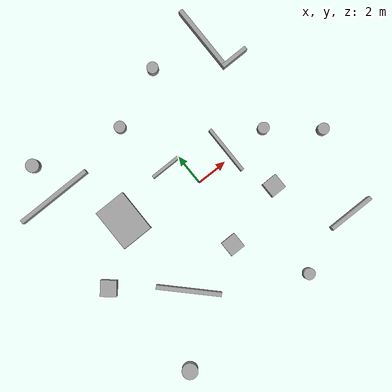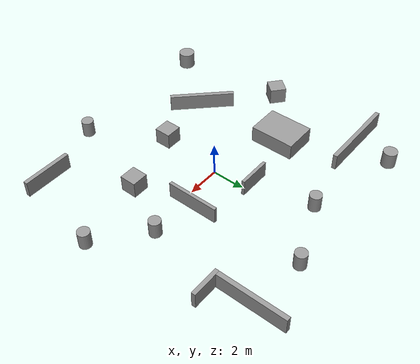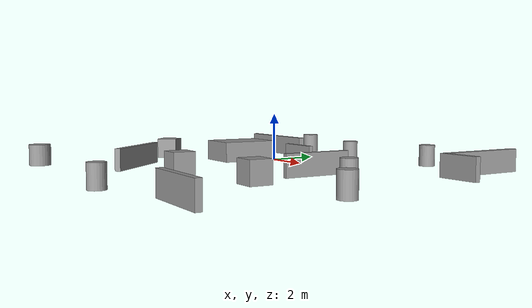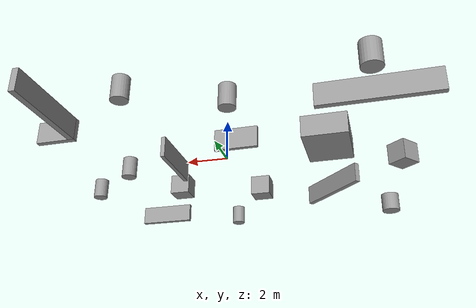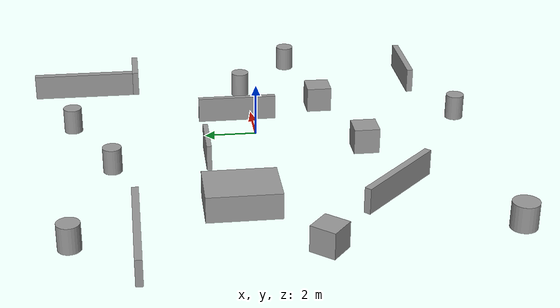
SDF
<?xml version='1.0'?>
<sdf version='1.7'>
  <model name='Experiment_Simple'>
    <link name='link_10'>
      <inertial>
        <mass>1</mass>
        <inertia>
          <ixx>0.166667</ixx>
          <ixy>0</ixy>
          <ixz>0</ixz>
          <iyy>0.166667</iyy>
          <iyz>0</iyz>
          <izz>0.166667</izz>
        </inertia>
      </inertial>
      <pose>-8.29662 -1.56155 0 0 0 -0.699492</pose>
      <visual name='visual'>
        <pose>0 0 0 0 -0 0</pose>
        <geometry>
          <box>
            <size>1 1 1</size>
          </box>
        </geometry>
        <material>
          <lighting>1</lighting>
          <script>
            <uri>file://media/materials/scripts/gazebo.material</uri>
            <name>Gazebo/Grey</name>
          </script>
          <shader type='pixel'/>
        </material>
        <transparency>0</transparency>
        <cast_shadows>1</cast_shadows>
      </visual>
      <collision name='collision'>
        <laser_retro>0</laser_retro>
        <max_contacts>10</max_contacts>
        <pose>0 0 0 0 -0 0</pose>
        <geometry>
          <box>
            <size>1 1 1</size>
          </box>
        </geometry>
        <surface>
          <friction>
            <ode>
              <mu>1</mu>
              <mu2>1</mu2>
              <fdir1>0 0 0</fdir1>
              <slip1>0</slip1>
              <slip2>0</slip2>
            </ode>
            <torsional>
              <coefficient>1</coefficient>
              <patch_radius>0</patch_radius>
              <surface_radius>0</surface_radius>
              <use_patch_radius>1</use_patch_radius>
              <ode>
                <slip>0</slip>
              </ode>
            </torsional>
          </friction>
          <bounce>
            <restitution_coefficient>0</restitution_coefficient>
            <threshold>1e+06</threshold>
          </bounce>
          <contact>
            <collide_without_contact>0</collide_without_contact>
            <collide_without_contact_bitmask>1</collide_without_contact_bitmask>
            <collide_bitmask>1</collide_bitmask>
            <ode>
              <soft_cfm>0</soft_cfm>
              <soft_erp>0.2</soft_erp>
              <kp>1e+13</kp>
              <kd>1</kd>
              <max_vel>0.01</max_vel>
              <min_depth>0</min_depth>
            </ode>
            <bullet>
              <split_impulse>1</split_impulse>
              <split_impulse_penetration_threshold>-0.01</split_impulse_penetration_threshold>
              <soft_cfm>0</soft_cfm>
              <soft_erp>0.2</soft_erp>
              <kp>1e+13</kp>
              <kd>1</kd>
            </bullet>
          </contact>
        </surface>
      </collision>
    </link>
    <link name='link_2'>
      <inertial>
        <mass>1.1429</mass>
        <inertia>
          <ixx>1.72518</ixx>
          <ixy>0</ixy>
          <ixz>0</ixz>
          <iyy>0.102508</iyy>
          <iyz>0</iyz>
          <izz>1.63721</izz>
        </inertia>
        <pose>0 0 0 0 -0 0</pose>
      </inertial>
      <pose>5.66657 6.79805 0 0 -0 0</pose>
      <visual name='visual'>
        <pose>0 0 0 0 -0 0</pose>
        <geometry>
          <box>
            <size>0.276226 4.13688 1</size>
          </box>
        </geometry>
        <material>
          <lighting>1</lighting>
          <script>
            <uri>file://media/materials/scripts/gazebo.material</uri>
            <name>Gazebo/Grey</name>
          </script>
          <shader type='pixel'/>
        </material>
        <transparency>0</transparency>
        <cast_shadows>1</cast_shadows>
      </visual>
      <collision name='collision'>
        <laser_retro>0</laser_retro>
        <max_contacts>10</max_contacts>
        <pose>0 0 0 0 -0 0</pose>
        <geometry>
          <box>
            <size>0.276226 4.13688 1</size>
          </box>
        </geometry>
        <surface>
          <friction>
            <ode>
              <mu>1</mu>
              <mu2>1</mu2>
              <fdir1>0 0 0</fdir1>
              <slip1>0</slip1>
              <slip2>0</slip2>
            </ode>
            <torsional>
              <coefficient>1</coefficient>
              <patch_radius>0</patch_radius>
              <surface_radius>0</surface_radius>
              <use_patch_radius>1</use_patch_radius>
              <ode>
                <slip>0</slip>
              </ode>
            </torsional>
          </friction>
          <bounce>
            <restitution_coefficient>0</restitution_coefficient>
            <threshold>1e+06</threshold>
          </bounce>
          <contact>
            <collide_without_contact>0</collide_without_contact>
            <collide_without_contact_bitmask>1</collide_without_contact_bitmask>
            <collide_bitmask>1</collide_bitmask>
            <ode>
              <soft_cfm>0</soft_cfm>
              <soft_erp>0.2</soft_erp>
              <kp>1e+13</kp>
              <kd>1</kd>
              <max_vel>0.01</max_vel>
              <min_depth>0</min_depth>
            </ode>
            <bullet>
              <split_impulse>1</split_impulse>
              <split_impulse_penetration_threshold>-0.01</split_impulse_penetration_threshold>
              <soft_cfm>0</soft_cfm>
              <soft_erp>0.2</soft_erp>
              <kp>1e+13</kp>
              <kd>1</kd>
            </bullet>
          </contact>
        </surface>
      </collision>
    </link>
    <link name='link_3'>
      <inertial>
        <mass>1.32032</mass>
        <inertia>
          <ixx>0.116978</ixx>
          <ixy>0</ixy>
          <ixz>0</ixz>
          <iyy>3.14635</iyy>
          <iyz>0</iyz>
          <izz>3.04328</izz>
        </inertia>
        <pose>0 0 0 0 -0 0</pose>
      </inertial>
      <pose>6 -7.23567 0 0 -0 0</pose>
      <visual name='visual'>
        <pose>0 0 0 0 -0 0</pose>
        <geometry>
          <box>
            <size>3 0.251362 1</size>
          </box>
        </geometry>
        <material>
          <lighting>1</lighting>
          <script>
            <uri>file://media/materials/scripts/gazebo.material</uri>
            <name>Gazebo/Grey</name>
          </script>
          <shader type='pixel'/>
        </material>
        <transparency>0</transparency>
        <cast_shadows>1</cast_shadows>
      </visual>
      <collision name='collision'>
        <laser_retro>0</laser_retro>
        <max_contacts>10</max_contacts>
        <pose>0 0 0 0 -0 0</pose>
        <geometry>
          <box>
            <size>3.25322 0.251362 1</size>
          </box>
        </geometry>
        <surface>
          <friction>
            <ode>
              <mu>1</mu>
              <mu2>1</mu2>
              <fdir1>0 0 0</fdir1>
              <slip1>0</slip1>
              <slip2>0</slip2>
            </ode>
            <torsional>
              <coefficient>1</coefficient>
              <patch_radius>0</patch_radius>
              <surface_radius>0</surface_radius>
              <use_patch_radius>1</use_patch_radius>
              <ode>
                <slip>0</slip>
              </ode>
            </torsional>
          </friction>
          <bounce>
            <restitution_coefficient>0</restitution_coefficient>
            <threshold>1e+06</threshold>
          </bounce>
          <contact>
            <collide_without_contact>0</collide_without_contact>
            <collide_without_contact_bitmask>1</collide_without_contact_bitmask>
            <collide_bitmask>1</collide_bitmask>
            <ode>
              <soft_cfm>0</soft_cfm>
              <soft_erp>0.2</soft_erp>
              <kp>1e+13</kp>
              <kd>1</kd>
              <max_vel>0.01</max_vel>
              <min_depth>0</min_depth>
            </ode>
            <bullet>
              <split_impulse>1</split_impulse>
              <split_impulse_penetration_threshold>-0.01</split_impulse_penetration_threshold>
              <soft_cfm>0</soft_cfm>
              <soft_erp>0.2</soft_erp>
              <kp>1e+13</kp>
              <kd>1</kd>
            </bullet>
          </contact>
        </surface>
      </collision>
    </link>
    <link name='link_5'>
      <inertial>
        <mass>1</mass>
        <inertia>
          <ixx>0.166667</ixx>
          <ixy>0</ixy>
          <ixz>0</ixz>
          <iyy>0.166667</iyy>
          <iyz>0</iyz>
          <izz>0.166667</izz>
        </inertia>
      </inertial>
      <pose>3.40204 -2.9991 0 0 -0 0</pose>
      <visual name='visual'>
        <pose>0 0 0 0 -0 0</pose>
        <geometry>
          <box>
            <size>1 1 1</size>
          </box>
        </geometry>
        <material>
          <lighting>1</lighting>
          <script>
            <uri>file://media/materials/scripts/gazebo.material</uri>
            <name>Gazebo/Grey</name>
          </script>
          <shader type='pixel'/>
        </material>
        <transparency>0</transparency>
        <cast_shadows>1</cast_shadows>
      </visual>
      <collision name='collision'>
        <laser_retro>0</laser_retro>
        <max_contacts>10</max_contacts>
        <pose>0 0 0 0 -0 0</pose>
        <geometry>
          <box>
            <size>1 1 1</size>
          </box>
        </geometry>
        <surface>
          <friction>
            <ode>
              <mu>1</mu>
              <mu2>1</mu2>
              <fdir1>0 0 0</fdir1>
              <slip1>0</slip1>
              <slip2>0</slip2>
            </ode>
            <torsional>
              <coefficient>1</coefficient>
              <patch_radius>0</patch_radius>
              <surface_radius>0</surface_radius>
              <use_patch_radius>1</use_patch_radius>
              <ode>
                <slip>0</slip>
              </ode>
            </torsional>
          </friction>
          <bounce>
            <restitution_coefficient>0</restitution_coefficient>
            <threshold>1e+06</threshold>
          </bounce>
          <contact>
            <collide_without_contact>0</collide_without_contact>
            <collide_without_contact_bitmask>1</collide_without_contact_bitmask>
            <collide_bitmask>1</collide_bitmask>
            <ode>
              <soft_cfm>0</soft_cfm>
              <soft_erp>0.2</soft_erp>
              <kp>1e+13</kp>
              <kd>1</kd>
              <max_vel>0.01</max_vel>
              <min_depth>0</min_depth>
            </ode>
            <bullet>
              <split_impulse>1</split_impulse>
              <split_impulse_penetration_threshold>-0.01</split_impulse_penetration_threshold>
              <soft_cfm>0</soft_cfm>
              <soft_erp>0.2</soft_erp>
              <kp>1e+13</kp>
              <kd>1</kd>
            </bullet>
          </contact>
        </surface>
      </collision>
    </link>
    <link name='link_5_clone'>
      <inertial>
        <mass>1</mass>
        <inertia>
          <ixx>0.166667</ixx>
          <ixy>0</ixy>
          <ixz>0</ixz>
          <iyy>0.166667</iyy>
          <iyz>0</iyz>
          <izz>0.166667</izz>
        </inertia>
      </inertial>
      <pose>-0.778044 -4.21642 0 0 -0 0</pose>
      <visual name='visual'>
        <pose>0 0 0 0 -0 0</pose>
        <geometry>
          <box>
            <size>1 1 1</size>
          </box>
        </geometry>
        <material>
          <lighting>1</lighting>
          <script>
            <uri>file://media/materials/scripts/gazebo.material</uri>
            <name>Gazebo/Grey</name>
          </script>
          <shader type='pixel'/>
        </material>
        <transparency>0</transparency>
        <cast_shadows>1</cast_shadows>
      </visual>
      <collision name='collision'>
        <laser_retro>0</laser_retro>
        <max_contacts>10</max_contacts>
        <pose>0 0 0 0 -0 0</pose>
        <geometry>
          <box>
            <size>1 1 1</size>
          </box>
        </geometry>
        <surface>
          <friction>
            <ode>
              <mu>1</mu>
              <mu2>1</mu2>
              <fdir1>0 0 0</fdir1>
              <slip1>0</slip1>
              <slip2>0</slip2>
            </ode>
            <torsional>
              <coefficient>1</coefficient>
              <patch_radius>0</patch_radius>
              <surface_radius>0</surface_radius>
              <use_patch_radius>1</use_patch_radius>
              <ode>
                <slip>0</slip>
              </ode>
            </torsional>
          </friction>
          <bounce>
            <restitution_coefficient>0</restitution_coefficient>
            <threshold>1e+06</threshold>
          </bounce>
          <contact>
            <collide_without_contact>0</collide_without_contact>
            <collide_without_contact_bitmask>1</collide_without_contact_bitmask>
            <collide_bitmask>1</collide_bitmask>
            <ode>
              <soft_cfm>0</soft_cfm>
              <soft_erp>0.2</soft_erp>
              <kp>1e+13</kp>
              <kd>1</kd>
              <max_vel>0.01</max_vel>
              <min_depth>0</min_depth>
            </ode>
            <bullet>
              <split_impulse>1</split_impulse>
              <split_impulse_penetration_threshold>-0.01</split_impulse_penetration_threshold>
              <soft_cfm>0</soft_cfm>
              <soft_erp>0.2</soft_erp>
              <kp>1e+13</kp>
              <kd>1</kd>
            </bullet>
          </contact>
        </surface>
      </collision>
    </link>
    <link name='link_5_clone_0'>
      <inertial>
        <mass>0.712033</mass>
        <inertia>
          <ixx>0.0615031</ixx>
          <ixy>0</ixy>
          <ixz>0</ixz>
          <iyy>0.882882</iyy>
          <iyz>0</iyz>
          <izz>0.825712</izz>
        </inertia>
        <pose>0 0 0 0 -0 0</pose>
      </inertial>
      <pose>-1 2 0 0 -0 0</pose>
      <visual name='visual'>
        <pose>0 0 0 0 -0 0</pose>
        <geometry>
          <box>
            <size>2 0.191103 1</size>
          </box>
        </geometry>
        <material>
          <lighting>1</lighting>
          <script>
            <uri>file://media/materials/scripts/gazebo.material</uri>
            <name>Gazebo/Grey</name>
          </script>
          <shader type='pixel'/>
        </material>
        <transparency>0</transparency>
        <cast_shadows>1</cast_shadows>
      </visual>
      <collision name='collision'>
        <laser_retro>0</laser_retro>
        <max_contacts>10</max_contacts>
        <pose>0 0 0 0 -0 0</pose>
        <geometry>
          <box>
            <size>2 0.191103 1</size>
          </box>
        </geometry>
        <surface>
          <friction>
            <ode>
              <mu>1</mu>
              <mu2>1</mu2>
              <fdir1>0 0 0</fdir1>
              <slip1>0</slip1>
              <slip2>0</slip2>
            </ode>
            <torsional>
              <coefficient>1</coefficient>
              <patch_radius>0</patch_radius>
              <surface_radius>0</surface_radius>
              <use_patch_radius>1</use_patch_radius>
              <ode>
                <slip>0</slip>
              </ode>
            </torsional>
          </friction>
          <bounce>
            <restitution_coefficient>0</restitution_coefficient>
            <threshold>1e+06</threshold>
          </bounce>
          <contact>
            <collide_without_contact>0</collide_without_contact>
            <collide_without_contact_bitmask>1</collide_without_contact_bitmask>
            <collide_bitmask>1</collide_bitmask>
            <ode>
              <soft_cfm>0</soft_cfm>
              <soft_erp>0.2</soft_erp>
              <kp>1e+13</kp>
              <kd>1</kd>
              <max_vel>0.01</max_vel>
              <min_depth>0</min_depth>
            </ode>
            <bullet>
              <split_impulse>1</split_impulse>
              <split_impulse_penetration_threshold>-0.01</split_impulse_penetration_threshold>
              <soft_cfm>0</soft_cfm>
              <soft_erp>0.2</soft_erp>
              <kp>1e+13</kp>
              <kd>1</kd>
            </bullet>
          </contact>
        </surface>
      </collision>
    </link>
    <link name='link_5_clone_1'>
      <inertial>
        <mass>0.630242</mass>
        <inertia>
          <ixx>0.575272</ixx>
          <ixy>0</ixy>
          <ixz>0</ixz>
          <iyy>0.0546154</iyy>
          <iyz>0</iyz>
          <izz>0.524847</izz>
        </inertia>
        <pose>0 0 0 0 -0 0</pose>
      </inertial>
      <pose>2.51313 0.507187 0 0 -0 0</pose>
      <visual name='visual'>
        <pose>0 0 0 0 -0 0</pose>
        <geometry>
          <box>
            <size>0.199733 3.15489 1</size>
          </box>
        </geometry>
        <material>
          <lighting>1</lighting>
          <script>
            <uri>file://media/materials/scripts/gazebo.material</uri>
            <name>Gazebo/Grey</name>
          </script>
          <shader type='pixel'/>
        </material>
        <transparency>0</transparency>
        <cast_shadows>1</cast_shadows>
      </visual>
      <collision name='collision'>
        <laser_retro>0</laser_retro>
        <max_contacts>10</max_contacts>
        <pose>0 0 0 0 -0 0</pose>
        <geometry>
          <box>
            <size>0.199733 3.15489 1</size>
          </box>
        </geometry>
        <surface>
          <friction>
            <ode>
              <mu>1</mu>
              <mu2>1</mu2>
              <fdir1>0 0 0</fdir1>
              <slip1>0</slip1>
              <slip2>0</slip2>
            </ode>
            <torsional>
              <coefficient>1</coefficient>
              <patch_radius>0</patch_radius>
              <surface_radius>0</surface_radius>
              <use_patch_radius>1</use_patch_radius>
              <ode>
                <slip>0</slip>
              </ode>
            </torsional>
          </friction>
          <bounce>
            <restitution_coefficient>0</restitution_coefficient>
            <threshold>1e+06</threshold>
          </bounce>
          <contact>
            <collide_without_contact>0</collide_without_contact>
            <collide_without_contact_bitmask>1</collide_without_contact_bitmask>
            <collide_bitmask>1</collide_bitmask>
            <ode>
              <soft_cfm>0</soft_cfm>
              <soft_erp>0.2</soft_erp>
              <kp>1e+13</kp>
              <kd>1</kd>
              <max_vel>0.01</max_vel>
              <min_depth>0</min_depth>
            </ode>
            <bullet>
              <split_impulse>1</split_impulse>
              <split_impulse_penetration_threshold>-0.01</split_impulse_penetration_threshold>
              <soft_cfm>0</soft_cfm>
              <soft_erp>0.2</soft_erp>
              <kp>1e+13</kp>
              <kd>1</kd>
            </bullet>
          </contact>
        </surface>
      </collision>
    </link>
    <link name='link_5_clone_clone'>
      <inertial>
        <mass>1.30127</mass>
        <inertia>
          <ixx>0.115917</ixx>
          <ixy>0</ixy>
          <ixz>0</ixz>
          <iyy>2.77245</iyy>
          <iyz>0</iyz>
          <izz>2.67149</izz>
        </inertia>
        <pose>0 0 0 0 -0 0</pose>
      </inertial>
      <pose>-7.40989 4.84956 0 0 -0 0</pose>
      <visual name='visual'>
        <pose>0 0 0 0 -0 0</pose>
        <geometry>
          <box>
            <size>4.9565 0.262609 1</size>
          </box>
        </geometry>
        <material>
          <lighting>1</lighting>
          <script>
            <uri>file://media/materials/scripts/gazebo.material</uri>
            <name>Gazebo/Grey</name>
          </script>
          <shader type='pixel'/>
        </material>
        <transparency>0</transparency>
        <cast_shadows>1</cast_shadows>
      </visual>
      <collision name='collision'>
        <laser_retro>0</laser_retro>
        <max_contacts>10</max_contacts>
        <pose>0 0 0 0 -0 0</pose>
        <geometry>
          <box>
            <size>4.9565 0.262609 1</size>
          </box>
        </geometry>
        <surface>
          <friction>
            <ode>
              <mu>1</mu>
              <mu2>1</mu2>
              <fdir1>0 0 0</fdir1>
              <slip1>0</slip1>
              <slip2>0</slip2>
            </ode>
            <torsional>
              <coefficient>1</coefficient>
              <patch_radius>0</patch_radius>
              <surface_radius>0</surface_radius>
              <use_patch_radius>1</use_patch_radius>
              <ode>
                <slip>0</slip>
              </ode>
            </torsional>
          </friction>
          <bounce>
            <restitution_coefficient>0</restitution_coefficient>
            <threshold>1e+06</threshold>
          </bounce>
          <contact>
            <collide_without_contact>0</collide_without_contact>
            <collide_without_contact_bitmask>1</collide_without_contact_bitmask>
            <collide_bitmask>1</collide_bitmask>
            <ode>
              <soft_cfm>0</soft_cfm>
              <soft_erp>0.2</soft_erp>
              <kp>1e+13</kp>
              <kd>1</kd>
              <max_vel>0.01</max_vel>
              <min_depth>0</min_depth>
            </ode>
            <bullet>
              <split_impulse>1</split_impulse>
              <split_impulse_penetration_threshold>-0.01</split_impulse_penetration_threshold>
              <soft_cfm>0</soft_cfm>
              <soft_erp>0.2</soft_erp>
              <kp>1e+13</kp>
              <kd>1</kd>
            </bullet>
          </contact>
        </surface>
      </collision>
    </link>
    <link name='link_5_clone_clone_0'>
      <inertial>
        <mass>1.36444</mass>
        <inertia>
          <ixx>0.121836</ixx>
          <ixy>0</ixy>
          <ixz>0</ixz>
          <iyy>3.0722</iyy>
          <iyz>0</iyz>
          <izz>2.96663</izz>
        </inertia>
        <pose>0 0 0 0 -0 0</pose>
      </inertial>
      <pose>-4.60181 -4.71567 0 0 0 -0.791152</pose>
      <visual name='visual'>
        <pose>0 0 0 0 -0 0</pose>
        <geometry>
          <box>
            <size>4 0.267447 1</size>
          </box>
        </geometry>
        <material>
          <lighting>1</lighting>
          <script>
            <uri>file://media/materials/scripts/gazebo.material</uri>
            <name>Gazebo/Grey</name>
          </script>
          <shader type='pixel'/>
        </material>
        <transparency>0</transparency>
        <cast_shadows>1</cast_shadows>
      </visual>
      <collision name='collision'>
        <laser_retro>0</laser_retro>
        <max_contacts>10</max_contacts>
        <pose>0 0 0 0 -0 0</pose>
        <geometry>
          <box>
            <size>4 0.267447 1</size>
          </box>
        </geometry>
        <surface>
          <friction>
            <ode>
              <mu>1</mu>
              <mu2>1</mu2>
              <fdir1>0 0 0</fdir1>
              <slip1>0</slip1>
              <slip2>0</slip2>
            </ode>
            <torsional>
              <coefficient>1</coefficient>
              <patch_radius>0</patch_radius>
              <surface_radius>0</surface_radius>
              <use_patch_radius>1</use_patch_radius>
              <ode>
                <slip>0</slip>
              </ode>
            </torsional>
          </friction>
          <bounce>
            <restitution_coefficient>0</restitution_coefficient>
            <threshold>1e+06</threshold>
          </bounce>
          <contact>
            <collide_without_contact>0</collide_without_contact>
            <collide_without_contact_bitmask>1</collide_without_contact_bitmask>
            <collide_bitmask>1</collide_bitmask>
            <ode>
              <soft_cfm>0</soft_cfm>
              <soft_erp>0.2</soft_erp>
              <kp>1e+13</kp>
              <kd>1</kd>
              <max_vel>0.01</max_vel>
              <min_depth>0</min_depth>
            </ode>
            <bullet>
              <split_impulse>1</split_impulse>
              <split_impulse_penetration_threshold>-0.01</split_impulse_penetration_threshold>
              <soft_cfm>0</soft_cfm>
              <soft_erp>0.2</soft_erp>
              <kp>1e+13</kp>
              <kd>1</kd>
            </bullet>
          </contact>
        </surface>
      </collision>
    </link>
    <link name='link_5_clone_clone_1'>
      <inertial>
        <mass>5.67818</mass>
        <inertia>
          <ixx>4.09051</ixx>
          <ixy>0</ixy>
          <ixz>0</ixz>
          <iyy>2.46886</iyy>
          <iyz>0</iyz>
          <izz>5.61301</izz>
        </inertia>
        <pose>0 0 0 0 -0 0</pose>
      </inertial>
      <pose>-5.02862 1.07054 0 0 -0 0</pose>
      <visual name='visual'>
        <pose>0 0 0 0 -0 0</pose>
        <geometry>
          <box>
            <size>2.05368 2.76491 1</size>
          </box>
        </geometry>
        <material>
          <lighting>1</lighting>
          <script>
            <uri>file://media/materials/scripts/gazebo.material</uri>
            <name>Gazebo/Grey</name>
          </script>
          <shader type='pixel'/>
        </material>
        <transparency>0</transparency>
        <cast_shadows>1</cast_shadows>
      </visual>
      <collision name='collision'>
        <laser_retro>0</laser_retro>
        <max_contacts>10</max_contacts>
        <pose>0 0 0 0 -0 0</pose>
        <geometry>
          <box>
            <size>2.05368 2.76491 1</size>
          </box>
        </geometry>
        <surface>
          <friction>
            <ode>
              <mu>1</mu>
              <mu2>1</mu2>
              <fdir1>0 0 0</fdir1>
              <slip1>0</slip1>
              <slip2>0</slip2>
            </ode>
            <torsional>
              <coefficient>1</coefficient>
              <patch_radius>0</patch_radius>
              <surface_radius>0</surface_radius>
              <use_patch_radius>1</use_patch_radius>
              <ode>
                <slip>0</slip>
              </ode>
            </torsional>
          </friction>
          <bounce>
            <restitution_coefficient>0</restitution_coefficient>
            <threshold>1e+06</threshold>
          </bounce>
          <contact>
            <collide_without_contact>0</collide_without_contact>
            <collide_without_contact_bitmask>1</collide_without_contact_bitmask>
            <collide_bitmask>1</collide_bitmask>
            <ode>
              <soft_cfm>0</soft_cfm>
              <soft_erp>0.2</soft_erp>
              <kp>1e+13</kp>
              <kd>1</kd>
              <max_vel>0.01</max_vel>
              <min_depth>0</min_depth>
            </ode>
            <bullet>
              <split_impulse>1</split_impulse>
              <split_impulse_penetration_threshold>-0.01</split_impulse_penetration_threshold>
              <soft_cfm>0</soft_cfm>
              <soft_erp>0.2</soft_erp>
              <kp>1e+13</kp>
              <kd>1</kd>
            </bullet>
          </contact>
        </surface>
      </collision>
    </link>
    <link name='link_6'>
      <inertial>
        <mass>0.713891</mass>
        <inertia>
          <ixx>0.0913424</ixx>
          <ixy>0</ixy>
          <ixz>0</ixz>
          <iyy>0.0913424</iyy>
          <iyz>0</iyz>
          <izz>0.0637031</izz>
        </inertia>
        <pose>0 0 0 0 -0 0</pose>
      </inertial>
      <pose>-7.24997 7.12646 0 0 -0 0</pose>
      <visual name='visual'>
        <pose>0 0 0 0 -0 0</pose>
        <geometry>
          <cylinder>
            <radius>0.422454</radius>
            <length>1</length>
          </cylinder>
        </geometry>
        <material>
          <lighting>1</lighting>
          <script>
            <uri>file://media/materials/scripts/gazebo.material</uri>
            <name>Gazebo/Grey</name>
          </script>
          <shader type='pixel'/>
        </material>
        <transparency>0</transparency>
        <cast_shadows>1</cast_shadows>
      </visual>
      <collision name='collision'>
        <laser_retro>0</laser_retro>
        <max_contacts>10</max_contacts>
        <pose>0 0 0 0 -0 0</pose>
        <geometry>
          <cylinder>
            <radius>0.422454</radius>
            <length>1</length>
          </cylinder>
        </geometry>
        <surface>
          <friction>
            <ode>
              <mu>1</mu>
              <mu2>1</mu2>
              <fdir1>0 0 0</fdir1>
              <slip1>0</slip1>
              <slip2>0</slip2>
            </ode>
            <torsional>
              <coefficient>1</coefficient>
              <patch_radius>0</patch_radius>
              <surface_radius>0</surface_radius>
              <use_patch_radius>1</use_patch_radius>
              <ode>
                <slip>0</slip>
              </ode>
            </torsional>
          </friction>
          <bounce>
            <restitution_coefficient>0</restitution_coefficient>
            <threshold>1e+06</threshold>
          </bounce>
          <contact>
            <collide_without_contact>0</collide_without_contact>
            <collide_without_contact_bitmask>1</collide_without_contact_bitmask>
            <collide_bitmask>1</collide_bitmask>
            <ode>
              <soft_cfm>0</soft_cfm>
              <soft_erp>0.2</soft_erp>
              <kp>1e+13</kp>
              <kd>1</kd>
              <max_vel>0.01</max_vel>
              <min_depth>0</min_depth>
            </ode>
            <bullet>
              <split_impulse>1</split_impulse>
              <split_impulse_penetration_threshold>-0.01</split_impulse_penetration_threshold>
              <soft_cfm>0</soft_cfm>
              <soft_erp>0.2</soft_erp>
              <kp>1e+13</kp>
              <kd>1</kd>
            </bullet>
          </contact>
        </surface>
      </collision>
    </link>
    <link name='link_7'>
      <inertial>
        <mass>1</mass>
        <inertia>
          <ixx>0.145833</ixx>
          <ixy>0</ixy>
          <ixz>0</ixz>
          <iyy>0.145833</iyy>
          <iyz>0</iyz>
          <izz>0.125</izz>
        </inertia>
      </inertial>
      <pose>-7.57601 -8.52914 0 0 -0 0</pose>
      <visual name='visual'>
        <pose>0 0 0 0 -0 0</pose>
        <geometry>
          <cylinder>
            <radius>0.5</radius>
            <length>1</length>
          </cylinder>
        </geometry>
        <material>
          <lighting>1</lighting>
          <script>
            <uri>file://media/materials/scripts/gazebo.material</uri>
            <name>Gazebo/Grey</name>
          </script>
          <shader type='pixel'/>
        </material>
        <transparency>0</transparency>
        <cast_shadows>1</cast_shadows>
      </visual>
      <collision name='collision'>
        <laser_retro>0</laser_retro>
        <max_contacts>10</max_contacts>
        <pose>0 0 0 0 -0 0</pose>
        <geometry>
          <cylinder>
            <radius>0.5</radius>
            <length>1</length>
          </cylinder>
        </geometry>
        <surface>
          <friction>
            <ode>
              <mu>1</mu>
              <mu2>1</mu2>
              <fdir1>0 0 0</fdir1>
              <slip1>0</slip1>
              <slip2>0</slip2>
            </ode>
            <torsional>
              <coefficient>1</coefficient>
              <patch_radius>0</patch_radius>
              <surface_radius>0</surface_radius>
              <use_patch_radius>1</use_patch_radius>
              <ode>
                <slip>0</slip>
              </ode>
            </torsional>
          </friction>
          <bounce>
            <restitution_coefficient>0</restitution_coefficient>
            <threshold>1e+06</threshold>
          </bounce>
          <contact>
            <collide_without_contact>0</collide_without_contact>
            <collide_without_contact_bitmask>1</collide_without_contact_bitmask>
            <collide_bitmask>1</collide_bitmask>
            <ode>
              <soft_cfm>0</soft_cfm>
              <soft_erp>0.2</soft_erp>
              <kp>1e+13</kp>
              <kd>1</kd>
              <max_vel>0.01</max_vel>
              <min_depth>0</min_depth>
            </ode>
            <bullet>
              <split_impulse>1</split_impulse>
              <split_impulse_penetration_threshold>-0.01</split_impulse_penetration_threshold>
              <soft_cfm>0</soft_cfm>
              <soft_erp>0.2</soft_erp>
              <kp>1e+13</kp>
              <kd>1</kd>
            </bullet>
          </contact>
        </surface>
      </collision>
    </link>
    <link name='link_8'>
      <inertial>
        <mass>0.525017</mass>
        <inertia>
          <ixx>0.0609795</ixx>
          <ixy>0</ixy>
          <ixz>0</ixz>
          <iyy>0.0609795</iyy>
          <iyz>0</iyz>
          <izz>0.0344562</izz>
        </inertia>
        <pose>0 0 0 0 -0 0</pose>
      </inertial>
      <pose>2.14931 7.20634 0 0 -0 0</pose>
      <visual name='visual'>
        <pose>0 0 0 0 -0 0</pose>
        <geometry>
          <cylinder>
            <radius>0.362295</radius>
            <length>1</length>
          </cylinder>
        </geometry>
        <material>
          <lighting>1</lighting>
          <script>
            <uri>file://media/materials/scripts/gazebo.material</uri>
            <name>Gazebo/Grey</name>
          </script>
          <shader type='pixel'/>
        </material>
        <transparency>0</transparency>
        <cast_shadows>1</cast_shadows>
      </visual>
      <collision name='collision'>
        <laser_retro>0</laser_retro>
        <max_contacts>10</max_contacts>
        <pose>0 0 0 0 -0 0</pose>
        <geometry>
          <cylinder>
            <radius>0.362295</radius>
            <length>1</length>
          </cylinder>
        </geometry>
        <surface>
          <friction>
            <ode>
              <mu>1</mu>
              <mu2>1</mu2>
              <fdir1>0 0 0</fdir1>
              <slip1>0</slip1>
              <slip2>0</slip2>
            </ode>
            <torsional>
              <coefficient>1</coefficient>
              <patch_radius>0</patch_radius>
              <surface_radius>0</surface_radius>
              <use_patch_radius>1</use_patch_radius>
              <ode>
                <slip>0</slip>
              </ode>
            </torsional>
          </friction>
          <bounce>
            <restitution_coefficient>0</restitution_coefficient>
            <threshold>1e+06</threshold>
          </bounce>
          <contact>
            <collide_without_contact>0</collide_without_contact>
            <collide_without_contact_bitmask>1</collide_without_contact_bitmask>
            <collide_bitmask>1</collide_bitmask>
            <ode>
              <soft_cfm>0</soft_cfm>
              <soft_erp>0.2</soft_erp>
              <kp>1e+13</kp>
              <kd>1</kd>
              <max_vel>0.01</max_vel>
              <min_depth>0</min_depth>
            </ode>
            <bullet>
              <split_impulse>1</split_impulse>
              <split_impulse_penetration_threshold>-0.01</split_impulse_penetration_threshold>
              <soft_cfm>0</soft_cfm>
              <soft_erp>0.2</soft_erp>
              <kp>1e+13</kp>
              <kd>1</kd>
            </bullet>
          </contact>
        </surface>
      </collision>
    </link>
    <link name='link_8_clone'>
      <inertial>
        <mass>0.525017</mass>
        <inertia>
          <ixx>0.0609795</ixx>
          <ixy>0</ixy>
          <ixz>0</ixz>
          <iyy>0.0609795</iyy>
          <iyz>0</iyz>
          <izz>0.0344562</izz>
        </inertia>
        <pose>0 0 0 0 -0 0</pose>
      </inertial>
      <pose>-1.64976 5.64326 0 0 -0 0</pose>
      <visual name='visual'>
        <pose>0 0 0 0 -0 0</pose>
        <geometry>
          <cylinder>
            <radius>0.362295</radius>
            <length>1</length>
          </cylinder>
        </geometry>
        <material>
          <lighting>1</lighting>
          <script>
            <uri>file://media/materials/scripts/gazebo.material</uri>
            <name>Gazebo/Grey</name>
          </script>
          <shader type='pixel'/>
        </material>
        <transparency>0</transparency>
        <cast_shadows>1</cast_shadows>
      </visual>
      <collision name='collision'>
        <laser_retro>0</laser_retro>
        <max_contacts>10</max_contacts>
        <pose>0 0 0 0 -0 0</pose>
        <geometry>
          <cylinder>
            <radius>0.362295</radius>
            <length>1</length>
          </cylinder>
        </geometry>
        <surface>
          <friction>
            <ode>
              <mu>1</mu>
              <mu2>1</mu2>
              <fdir1>0 0 0</fdir1>
              <slip1>0</slip1>
              <slip2>0</slip2>
            </ode>
            <torsional>
              <coefficient>1</coefficient>
              <patch_radius>0</patch_radius>
              <surface_radius>0</surface_radius>
              <use_patch_radius>1</use_patch_radius>
              <ode>
                <slip>0</slip>
              </ode>
            </torsional>
          </friction>
          <bounce>
            <restitution_coefficient>0</restitution_coefficient>
            <threshold>1e+06</threshold>
          </bounce>
          <contact>
            <collide_without_contact>0</collide_without_contact>
            <collide_without_contact_bitmask>1</collide_without_contact_bitmask>
            <collide_bitmask>1</collide_bitmask>
            <ode>
              <soft_cfm>0</soft_cfm>
              <soft_erp>0.2</soft_erp>
              <kp>1e+13</kp>
              <kd>1</kd>
              <max_vel>0.01</max_vel>
              <min_depth>0</min_depth>
            </ode>
            <bullet>
              <split_impulse>1</split_impulse>
              <split_impulse_penetration_threshold>-0.01</split_impulse_penetration_threshold>
              <soft_cfm>0</soft_cfm>
              <soft_erp>0.2</soft_erp>
              <kp>1e+13</kp>
              <kd>1</kd>
            </bullet>
          </contact>
        </surface>
      </collision>
    </link>
    <link name='link_8_clone_0'>
      <inertial>
        <mass>0.525017</mass>
        <inertia>
          <ixx>0.0609795</ixx>
          <ixy>0</ixy>
          <ixz>0</ixz>
          <iyy>0.0609795</iyy>
          <iyz>0</iyz>
          <izz>0.0344562</izz>
        </inertia>
        <pose>0 0 0 0 -0 0</pose>
      </inertial>
      <pose>1.71586 -8.48207 0 0 -0 0</pose>
      <visual name='visual'>
        <pose>0 0 0 0 -0 0</pose>
        <geometry>
          <cylinder>
            <radius>0.362295</radius>
            <length>1</length>
          </cylinder>
        </geometry>
        <material>
          <lighting>1</lighting>
          <script>
            <uri>file://media/materials/scripts/gazebo.material</uri>
            <name>Gazebo/Grey</name>
          </script>
          <shader type='pixel'/>
        </material>
        <transparency>0</transparency>
        <cast_shadows>1</cast_shadows>
      </visual>
      <collision name='collision'>
        <laser_retro>0</laser_retro>
        <max_contacts>10</max_contacts>
        <pose>0 0 0 0 -0 0</pose>
        <geometry>
          <cylinder>
            <radius>0.362295</radius>
            <length>1</length>
          </cylinder>
        </geometry>
        <surface>
          <friction>
            <ode>
              <mu>1</mu>
              <mu2>1</mu2>
              <fdir1>0 0 0</fdir1>
              <slip1>0</slip1>
              <slip2>0</slip2>
            </ode>
            <torsional>
              <coefficient>1</coefficient>
              <patch_radius>0</patch_radius>
              <surface_radius>0</surface_radius>
              <use_patch_radius>1</use_patch_radius>
              <ode>
                <slip>0</slip>
              </ode>
            </torsional>
          </friction>
          <bounce>
            <restitution_coefficient>0</restitution_coefficient>
            <threshold>1e+06</threshold>
          </bounce>
          <contact>
            <collide_without_contact>0</collide_without_contact>
            <collide_without_contact_bitmask>1</collide_without_contact_bitmask>
            <collide_bitmask>1</collide_bitmask>
            <ode>
              <soft_cfm>0</soft_cfm>
              <soft_erp>0.2</soft_erp>
              <kp>1e+13</kp>
              <kd>1</kd>
              <max_vel>0.01</max_vel>
              <min_depth>0</min_depth>
            </ode>
            <bullet>
              <split_impulse>1</split_impulse>
              <split_impulse_penetration_threshold>-0.01</split_impulse_penetration_threshold>
              <soft_cfm>0</soft_cfm>
              <soft_erp>0.2</soft_erp>
              <kp>1e+13</kp>
              <kd>1</kd>
            </bullet>
          </contact>
        </surface>
      </collision>
    </link>
    <link name='link_8_clone_1'>
      <inertial>
        <mass>0.525017</mass>
        <inertia>
          <ixx>0.0609795</ixx>
          <ixy>0</ixy>
          <ixz>0</ixz>
          <iyy>0.0609795</iyy>
          <iyz>0</iyz>
          <izz>0.0344562</izz>
        </inertia>
        <pose>0 0 0 0 -0 0</pose>
      </inertial>
      <pose>5.1037 0.123871 0 0 -0 0</pose>
      <visual name='visual'>
        <pose>0 0 0 0 -0 0</pose>
        <geometry>
          <cylinder>
            <radius>0.362295</radius>
            <length>1</length>
          </cylinder>
        </geometry>
        <material>
          <lighting>1</lighting>
          <script>
            <uri>file://media/materials/scripts/gazebo.material</uri>
            <name>Gazebo/Grey</name>
          </script>
          <shader type='pixel'/>
        </material>
        <transparency>0</transparency>
        <cast_shadows>1</cast_shadows>
      </visual>
      <collision name='collision'>
        <laser_retro>0</laser_retro>
        <max_contacts>10</max_contacts>
        <pose>0 0 0 0 -0 0</pose>
        <geometry>
          <cylinder>
            <radius>0.362295</radius>
            <length>1</length>
          </cylinder>
        </geometry>
        <surface>
          <friction>
            <ode>
              <mu>1</mu>
              <mu2>1</mu2>
              <fdir1>0 0 0</fdir1>
              <slip1>0</slip1>
              <slip2>0</slip2>
            </ode>
            <torsional>
              <coefficient>1</coefficient>
              <patch_radius>0</patch_radius>
              <surface_radius>0</surface_radius>
              <use_patch_radius>1</use_patch_radius>
              <ode>
                <slip>0</slip>
              </ode>
            </torsional>
          </friction>
          <bounce>
            <restitution_coefficient>0</restitution_coefficient>
            <threshold>1e+06</threshold>
          </bounce>
          <contact>
            <collide_without_contact>0</collide_without_contact>
            <collide_without_contact_bitmask>1</collide_without_contact_bitmask>
            <collide_bitmask>1</collide_bitmask>
            <ode>
              <soft_cfm>0</soft_cfm>
              <soft_erp>0.2</soft_erp>
              <kp>1e+13</kp>
              <kd>1</kd>
              <max_vel>0.01</max_vel>
              <min_depth>0</min_depth>
            </ode>
            <bullet>
              <split_impulse>1</split_impulse>
              <split_impulse_penetration_threshold>-0.01</split_impulse_penetration_threshold>
              <soft_cfm>0</soft_cfm>
              <soft_erp>0.2</soft_erp>
              <kp>1e+13</kp>
              <kd>1</kd>
            </bullet>
          </contact>
        </surface>
      </collision>
    </link>
    <link name='link_8_clone_2'>
      <inertial>
        <mass>0.525017</mass>
        <inertia>
          <ixx>0.0609795</ixx>
          <ixy>0</ixy>
          <ixz>0</ixz>
          <iyy>0.0609795</iyy>
          <iyz>0</iyz>
          <izz>0.0344562</izz>
        </inertia>
        <pose>0 0 0 0 -0 0</pose>
      </inertial>
      <pose>7.91006 -2.1939 0 0 -0 0</pose>
      <visual name='visual'>
        <pose>0 0 0 0 -0 0</pose>
        <geometry>
          <cylinder>
            <radius>0.362295</radius>
            <length>1</length>
          </cylinder>
        </geometry>
        <material>
          <lighting>1</lighting>
          <script>
            <uri>file://media/materials/scripts/gazebo.material</uri>
            <name>Gazebo/Grey</name>
          </script>
          <shader type='pixel'/>
        </material>
        <transparency>0</transparency>
        <cast_shadows>1</cast_shadows>
      </visual>
      <collision name='collision'>
        <laser_retro>0</laser_retro>
        <max_contacts>10</max_contacts>
        <pose>0 0 0 0 -0 0</pose>
        <geometry>
          <cylinder>
            <radius>0.362295</radius>
            <length>1</length>
          </cylinder>
        </geometry>
        <surface>
          <friction>
            <ode>
              <mu>1</mu>
              <mu2>1</mu2>
              <fdir1>0 0 0</fdir1>
              <slip1>0</slip1>
              <slip2>0</slip2>
            </ode>
            <torsional>
              <coefficient>1</coefficient>
              <patch_radius>0</patch_radius>
              <surface_radius>0</surface_radius>
              <use_patch_radius>1</use_patch_radius>
              <ode>
                <slip>0</slip>
              </ode>
            </torsional>
          </friction>
          <bounce>
            <restitution_coefficient>0</restitution_coefficient>
            <threshold>1e+06</threshold>
          </bounce>
          <contact>
            <collide_without_contact>0</collide_without_contact>
            <collide_without_contact_bitmask>1</collide_without_contact_bitmask>
            <collide_bitmask>1</collide_bitmask>
            <ode>
              <soft_cfm>0</soft_cfm>
              <soft_erp>0.2</soft_erp>
              <kp>1e+13</kp>
              <kd>1</kd>
              <max_vel>0.01</max_vel>
              <min_depth>0</min_depth>
            </ode>
            <bullet>
              <split_impulse>1</split_impulse>
              <split_impulse_penetration_threshold>-0.01</split_impulse_penetration_threshold>
              <soft_cfm>0</soft_cfm>
              <soft_erp>0.2</soft_erp>
              <kp>1e+13</kp>
              <kd>1</kd>
            </bullet>
          </contact>
        </surface>
      </collision>
    </link>
    <link name='link_9'>
      <inertial>
        <mass>0.450256</mass>
        <inertia>
          <ixx>0.039838</ixx>
          <ixy>0</ixy>
          <ixz>0</ixz>
          <iyy>0.160706</iyy>
          <iyz>0</iyz>
          <izz>0.125501</izz>
        </inertia>
        <pose>0 0 0 0 -0 0</pose>
      </inertial>
      <pose>6.43107 4.6067 0 0 -0 0</pose>
      <visual name='visual'>
        <pose>0 0 0 0 -0 0</pose>
        <geometry>
          <box>
            <size>1.81192 0.248481 1</size>
          </box>
        </geometry>
        <material>
          <lighting>1</lighting>
          <script>
            <uri>file://media/materials/scripts/gazebo.material</uri>
            <name>Gazebo/Grey</name>
          </script>
          <shader type='pixel'/>
        </material>
        <transparency>0</transparency>
        <cast_shadows>1</cast_shadows>
      </visual>
      <collision name='collision'>
        <laser_retro>0</laser_retro>
        <max_contacts>10</max_contacts>
        <pose>0 0 0 0 -0 0</pose>
        <geometry>
          <box>
            <size>1.81192 0.248481 1</size>
          </box>
        </geometry>
        <surface>
          <friction>
            <ode>
              <mu>1</mu>
              <mu2>1</mu2>
              <fdir1>0 0 0</fdir1>
              <slip1>0</slip1>
              <slip2>0</slip2>
            </ode>
            <torsional>
              <coefficient>1</coefficient>
              <patch_radius>0</patch_radius>
              <surface_radius>0</surface_radius>
              <use_patch_radius>1</use_patch_radius>
              <ode>
                <slip>0</slip>
              </ode>
            </torsional>
          </friction>
          <bounce>
            <restitution_coefficient>0</restitution_coefficient>
            <threshold>1e+06</threshold>
          </bounce>
          <contact>
            <collide_without_contact>0</collide_without_contact>
            <collide_without_contact_bitmask>1</collide_without_contact_bitmask>
            <collide_bitmask>1</collide_bitmask>
            <ode>
              <soft_cfm>0</soft_cfm>
              <soft_erp>0.2</soft_erp>
              <kp>1e+13</kp>
              <kd>1</kd>
              <max_vel>0.01</max_vel>
              <min_depth>0</min_depth>
            </ode>
            <bullet>
              <split_impulse>1</split_impulse>
              <split_impulse_penetration_threshold>-0.01</split_impulse_penetration_threshold>
              <soft_cfm>0</soft_cfm>
              <soft_erp>0.2</soft_erp>
              <kp>1e+13</kp>
              <kd>1</kd>
            </bullet>
          </contact>
        </surface>
      </collision>
    </link>
    <static>true</static>
    <allow_auto_disable>1</allow_auto_disable>
  </model>
</sdf>
